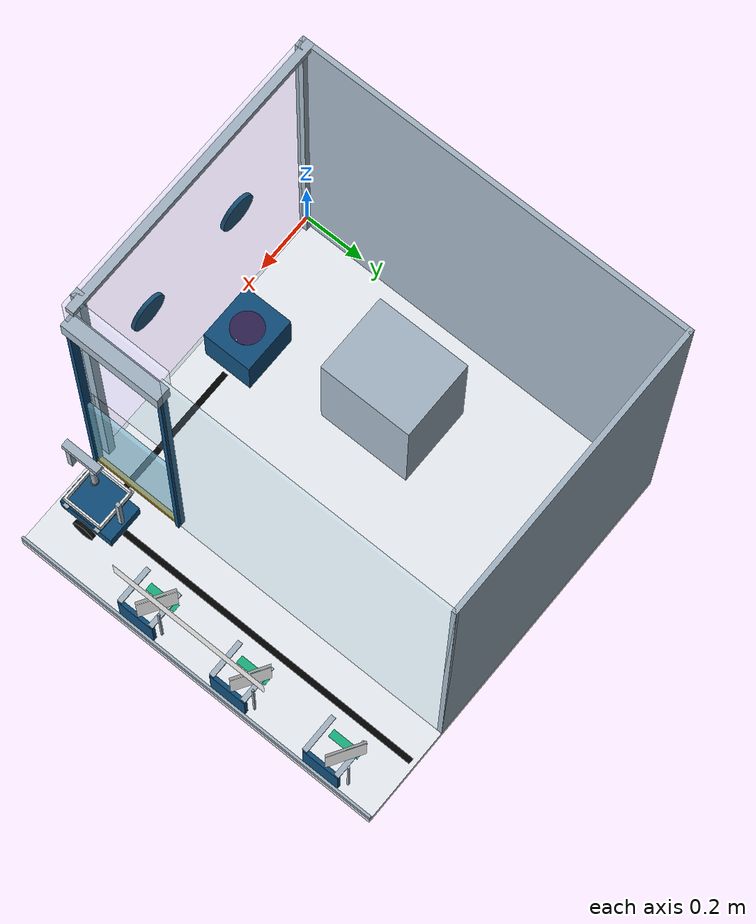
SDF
<?xml version='1.0' encoding='utf-8'?>
<sdf version="1.9">
  <world name="wafer_transport">
    <physics name="physics" type="ignored">
      <max_step_size>0.001</max_step_size>
      <real_time_factor>1.0</real_time_factor>
    </physics>
    <gravity>0 0 -9.81</gravity>
    <plugin filename="gz-sim-physics-system" name="gz::sim::systems::Physics" />
    <plugin filename="gz-sim-user-commands-system" name="gz::sim::systems::UserCommands" />
    <plugin filename="gz-sim-scene-broadcaster-system" name="gz::sim::systems::SceneBroadcaster" />
    <plugin filename="gz-sim-sensors-system" name="gz::sim::systems::Sensors">
      <render_engine>ogre2</render_engine>
    </plugin>
    <scene>
      <ambient>0.65 0.65 0.65 1</ambient>
      <background>0.78 0.83 0.88 1</background>
      <shadows>false</shadows>
    </scene>
    <light name="overhead" type="directional">
      <pose>0 0 3 0 0 0</pose>
      <diffuse>0.9 0.9 0.9 1</diffuse>
      <direction>-0.2 0.1 -1</direction>
    </light>
    <model name="cleanroom">
      <static>true</static>
      <link name="structure">
        <pose>0 0 0 0 0 0</pose>
        <inertial>
          <mass>0.1</mass>
          <inertia>
            <ixx>0.00016666666666666672</ixx>
            <iyy>0.00016666666666666672</iyy>
            <izz>0.00016666666666666672</izz>
            <ixy>0</ixy>
            <ixz>0</ixz>
            <iyz>0</iyz>
          </inertia>
        </inertial>
        <visual name="floor">
          <pose>0.6096 0.6096 -0.015 0 0 0</pose>
          <geometry>
            <box>
              <size>1.2192 1.2192 0.03</size>
            </box>
          </geometry>
          <material>
            <ambient>0.93 0.95 0.97 1</ambient>
            <diffuse>0.93 0.95 0.97 1</diffuse>
          </material>
        </visual>
        <collision name="floor_collision">
          <pose>0.6096 0.6096 -0.015 0 0 0</pose>
          <geometry>
            <box>
              <size>1.2192 1.2192 0.03</size>
            </box>
          </geometry>
          <surface>
            <friction>
              <ode>
                <mu>0.9</mu>
                <mu2>0.9</mu2>
              </ode>
            </friction>
          </surface>
        </collision>
        <visual name="enclosure_back">
          <pose>0.0075 0.6096 0.6096 0 0 0</pose>
          <geometry>
            <box>
              <size>0.015 1.2192 1.2192</size>
            </box>
          </geometry>
          <material>
            <ambient>0.65 0.72 0.78 1</ambient>
            <diffuse>0.65 0.72 0.78 1</diffuse>
          </material>
        </visual>
        <collision name="enclosure_back_collision">
          <pose>0.0075 0.6096 0.6096 0 0 0</pose>
          <geometry>
            <box>
              <size>0.015 1.2192 1.2192</size>
            </box>
          </geometry>
          <surface>
            <friction>
              <ode>
                <mu>0.9</mu>
                <mu2>0.9</mu2>
              </ode>
            </friction>
          </surface>
        </collision>
        <visual name="enclosure_far">
          <pose>0.4572 1.2117 0.6096 0 0 0</pose>
          <geometry>
            <box>
              <size>0.9144 0.015 1.2192</size>
            </box>
          </geometry>
          <material>
            <ambient>0.65 0.72 0.78 1</ambient>
            <diffuse>0.65 0.72 0.78 1</diffuse>
          </material>
        </visual>
        <collision name="enclosure_far_collision">
          <pose>0.4572 1.2117 0.6096 0 0 0</pose>
          <geometry>
            <box>
              <size>0.9144 0.015 1.2192</size>
            </box>
          </geometry>
          <surface>
            <friction>
              <ode>
                <mu>0.9</mu>
                <mu2>0.9</mu2>
              </ode>
            </friction>
          </surface>
        </collision>
        <visual name="divider">
          <pose>0.9094 0.7646 0.6096 0 0 0</pose>
          <geometry>
            <box>
              <size>0.01 0.9092 1.2192</size>
            </box>
          </geometry>
          <material>
            <ambient>0.6 0.8 0.9 1</ambient>
            <diffuse>0.6 0.8 0.9 1</diffuse>
          </material>
          <transparency>0.78</transparency>
        </visual>
        <collision name="divider_collision">
          <pose>0.9094 0.7646 0.6096 0 0 0</pose>
          <geometry>
            <box>
              <size>0.01 0.9092 1.2192</size>
            </box>
          </geometry>
          <surface>
            <friction>
              <ode>
                <mu>0.9</mu>
                <mu2>0.9</mu2>
              </ode>
            </friction>
          </surface>
        </collision>
        <visual name="loading_header">
          <pose>0.8854 0.155 0.8696 0 0 0</pose>
          <geometry>
            <box>
              <size>0.01 0.31 0.6992</size>
            </box>
          </geometry>
          <material>
            <ambient>0.6 0.8 0.9 1</ambient>
            <diffuse>0.6 0.8 0.9 1</diffuse>
          </material>
          <transparency>0.78</transparency>
        </visual>
        <collision name="loading_header_collision">
          <pose>0.8854 0.155 0.8696 0 0 0</pose>
          <geometry>
            <box>
              <size>0.01 0.31 0.6992</size>
            </box>
          </geometry>
          <surface>
            <friction>
              <ode>
                <mu>0.9</mu>
                <mu2>0.9</mu2>
              </ode>
            </friction>
          </surface>
        </collision>
        <visual name="front_glass">
          <pose>0.4572 0.005 0.6096 0 0 0</pose>
          <geometry>
            <box>
              <size>0.9144 0.01 1.2192</size>
            </box>
          </geometry>
          <material>
            <ambient>0.6 0.8 0.9 1</ambient>
            <diffuse>0.6 0.8 0.9 1</diffuse>
          </material>
          <transparency>0.85</transparency>
        </visual>
        <collision name="front_glass_collision">
          <pose>0.4572 0.005 0.6096 0 0 0</pose>
          <geometry>
            <box>
              <size>0.9144 0.01 1.2192</size>
            </box>
          </geometry>
          <surface>
            <friction>
              <ode>
                <mu>0.9</mu>
                <mu2>0.9</mu2>
              </ode>
            </friction>
          </surface>
        </collision>
        <visual name="glove_port_0.28">
          <pose>0.28 -0.003 0.58 1.5707963267948966 0 0</pose>
          <geometry>
            <cylinder>
              <radius>0.06</radius>
              <length>0.012</length>
            </cylinder>
          </geometry>
          <material>
            <ambient>0.06 0.30 0.48 1</ambient>
            <diffuse>0.06 0.30 0.48 1</diffuse>
          </material>
        </visual>
        <visual name="glove_insert_0.28">
          <pose>0.28 -0.006 0.58 1.5707963267948966 0 0</pose>
          <geometry>
            <cylinder>
              <radius>0.046</radius>
              <length>0.014</length>
            </cylinder>
          </geometry>
          <material>
            <ambient>0.65 0.72 0.78 1</ambient>
            <diffuse>0.65 0.72 0.78 1</diffuse>
          </material>
        </visual>
        <visual name="glove_port_0.64">
          <pose>0.64 -0.003 0.58 1.5707963267948966 0 0</pose>
          <geometry>
            <cylinder>
              <radius>0.06</radius>
              <length>0.012</length>
            </cylinder>
          </geometry>
          <material>
            <ambient>0.06 0.30 0.48 1</ambient>
            <diffuse>0.06 0.30 0.48 1</diffuse>
          </material>
        </visual>
        <visual name="glove_insert_0.64">
          <pose>0.64 -0.006 0.58 1.5707963267948966 0 0</pose>
          <geometry>
            <cylinder>
              <radius>0.046</radius>
              <length>0.014</length>
            </cylinder>
          </geometry>
          <material>
            <ambient>0.65 0.72 0.78 1</ambient>
            <diffuse>0.65 0.72 0.78 1</diffuse>
          </material>
        </visual>
        <visual name="frame_0.02">
          <pose>0.02 0.0125 0.6096 0 0 0</pose>
          <geometry>
            <box>
              <size>0.025 0.025 1.2192</size>
            </box>
          </geometry>
          <material>
            <ambient>0.65 0.72 0.78 1</ambient>
            <diffuse>0.65 0.72 0.78 1</diffuse>
          </material>
        </visual>
        <collision name="frame_0.02_collision">
          <pose>0.02 0.0125 0.6096 0 0 0</pose>
          <geometry>
            <box>
              <size>0.025 0.025 1.2192</size>
            </box>
          </geometry>
          <surface>
            <friction>
              <ode>
                <mu>0.9</mu>
                <mu2>0.9</mu2>
              </ode>
            </friction>
          </surface>
        </collision>
        <visual name="frame_0.87">
          <pose>0.87 0.0125 0.6096 0 0 0</pose>
          <geometry>
            <box>
              <size>0.025 0.025 1.2192</size>
            </box>
          </geometry>
          <material>
            <ambient>0.65 0.72 0.78 1</ambient>
            <diffuse>0.65 0.72 0.78 1</diffuse>
          </material>
        </visual>
        <collision name="frame_0.87_collision">
          <pose>0.87 0.0125 0.6096 0 0 0</pose>
          <geometry>
            <box>
              <size>0.025 0.025 1.2192</size>
            </box>
          </geometry>
          <surface>
            <friction>
              <ode>
                <mu>0.9</mu>
                <mu2>0.9</mu2>
              </ode>
            </friction>
          </surface>
        </collision>
        <visual name="top_frame">
          <pose>0.4572 0.025 1.2067 0 0 0</pose>
          <geometry>
            <box>
              <size>0.9144 0.025 0.025</size>
            </box>
          </geometry>
          <material>
            <ambient>0.65 0.72 0.78 1</ambient>
            <diffuse>0.65 0.72 0.78 1</diffuse>
          </material>
        </visual>
        <collision name="top_frame_collision">
          <pose>0.4572 0.025 1.2067 0 0 0</pose>
          <geometry>
            <box>
              <size>0.9144 0.025 0.025</size>
            </box>
          </geometry>
          <surface>
            <friction>
              <ode>
                <mu>0.9</mu>
                <mu2>0.9</mu2>
              </ode>
            </friction>
          </surface>
        </collision>
        <visual name="corridor_boundary">
          <pose>1.2152 0.6096 0.0125 0 0 0</pose>
          <geometry>
            <box>
              <size>0.008 1.2192 0.025</size>
            </box>
          </geometry>
          <material>
            <ambient>0.65 0.72 0.78 1</ambient>
            <diffuse>0.65 0.72 0.78 1</diffuse>
          </material>
        </visual>
        <collision name="corridor_boundary_collision">
          <pose>1.2152 0.6096 0.0125 0 0 0</pose>
          <geometry>
            <box>
              <size>0.008 1.2192 0.025</size>
            </box>
          </geometry>
          <surface>
            <friction>
              <ode>
                <mu>0.9</mu>
                <mu2>0.9</mu2>
              </ode>
            </friction>
          </surface>
        </collision>
        <visual name="path">
          <pose>1.025 0.6096 0.0003 0 0 0</pose>
          <geometry>
            <box>
              <size>0.018 1.19 0.0005</size>
            </box>
          </geometry>
          <material>
            <ambient>0.005 0.005 0.005 1</ambient>
            <diffuse>0.005 0.005 0.005 1</diffuse>
          </material>
        </visual>
        <visual name="room_tape">
          <pose>0.79 0.12 0.0003 0 0 0</pose>
          <geometry>
            <box>
              <size>0.58 0.018 0.0005</size>
            </box>
          </geometry>
          <material>
            <ambient>0.005 0.005 0.005 1</ambient>
            <diffuse>0.005 0.005 0.005 1</diffuse>
          </material>
        </visual>
        <visual name="process_output">
          <pose>0.4 0.12 0.077 0 0 0</pose>
          <geometry>
            <box>
              <size>0.18 0.16 0.154</size>
            </box>
          </geometry>
          <material>
            <ambient>0.06 0.30 0.48 1</ambient>
            <diffuse>0.06 0.30 0.48 1</diffuse>
          </material>
        </visual>
        <collision name="process_output_collision">
          <pose>0.4 0.12 0.077 0 0 0</pose>
          <geometry>
            <box>
              <size>0.18 0.16 0.154</size>
            </box>
          </geometry>
          <surface>
            <friction>
              <ode>
                <mu>0.9</mu>
                <mu2>0.9</mu2>
              </ode>
            </friction>
          </surface>
        </collision>
        <visual name="process_machine">
          <pose>0.3 0.55 0.2 0 0 0</pose>
          <geometry>
            <box>
              <size>0.25 0.3 0.4</size>
            </box>
          </geometry>
          <material>
            <ambient>0.65 0.72 0.78 1</ambient>
            <diffuse>0.65 0.72 0.78 1</diffuse>
          </material>
        </visual>
        <collision name="process_machine_collision">
          <pose>0.3 0.55 0.2 0 0 0</pose>
          <geometry>
            <box>
              <size>0.25 0.3 0.4</size>
            </box>
          </geometry>
          <surface>
            <friction>
              <ode>
                <mu>0.9</mu>
                <mu2>0.9</mu2>
              </ode>
            </friction>
          </surface>
        </collision>
        <visual name="equipment_screen">
          <pose>0.3 0.396 0.32 0 0 0</pose>
          <geometry>
            <box>
              <size>0.12 0.008 0.06</size>
            </box>
          </geometry>
          <material>
            <ambient>0.05 0.65 0.65 1</ambient>
            <diffuse>0.05 0.65 0.65 1</diffuse>
          </material>
        </visual>
        <visual name="loading_rail_-0.054">
          <pose>1.025 0.066 0.142 0 0 0</pose>
          <geometry>
            <box>
              <size>0.15 0.016 0.008</size>
            </box>
          </geometry>
          <material>
            <ambient>0.65 0.72 0.78 1</ambient>
            <diffuse>0.65 0.72 0.78 1</diffuse>
          </material>
        </visual>
        <collision name="loading_rail_-0.054_collision">
          <pose>1.025 0.066 0.142 0 0 0</pose>
          <geometry>
            <box>
              <size>0.15 0.016 0.008</size>
            </box>
          </geometry>
          <surface>
            <friction>
              <ode>
                <mu>0.9</mu>
                <mu2>0.9</mu2>
              </ode>
            </friction>
          </surface>
        </collision>
        <visual name="loading_rail_0.054">
          <pose>1.025 0.174 0.142 0 0 0</pose>
          <geometry>
            <box>
              <size>0.15 0.016 0.008</size>
            </box>
          </geometry>
          <material>
            <ambient>0.65 0.72 0.78 1</ambient>
            <diffuse>0.65 0.72 0.78 1</diffuse>
          </material>
        </visual>
        <collision name="loading_rail_0.054_collision">
          <pose>1.025 0.174 0.142 0 0 0</pose>
          <geometry>
            <box>
              <size>0.15 0.016 0.008</size>
            </box>
          </geometry>
          <surface>
            <friction>
              <ode>
                <mu>0.9</mu>
                <mu2>0.9</mu2>
              </ode>
            </friction>
          </surface>
        </collision>
        <visual name="enclosure_dimensions">
          <pose>0.4572 -0.001 1.11 1.5707963267948966 0 0.0</pose>
          <geometry>
            <plane>
              <normal>0 0 1</normal>
              <size>0.65 0.085</size>
            </plane>
          </geometry>
          <material>
            <ambient>1 1 1 1</ambient>
            <diffuse>1 1 1 1</diffuse>
            <emissive>0.35 0.35 0.35 1</emissive>
            <pbr>
              <metal>
                <albedo_map>../textures/enclosure_label.png</albedo_map>
                <metalness>0</metalness>
                <roughness>1</roughness>
              </metal>
            </pbr>
          </material>
          <cast_shadows>false</cast_shadows>
        </visual>
        <visual name="corridor_dimensions">
          <pose>1.219 0.62 0.55 1.5707963267948966 0 1.5707963267948966</pose>
          <geometry>
            <plane>
              <normal>0 0 1</normal>
              <size>0.5 0.07</size>
            </plane>
          </geometry>
          <material>
            <ambient>1 1 1 1</ambient>
            <diffuse>1 1 1 1</diffuse>
            <emissive>0.35 0.35 0.35 1</emissive>
            <pbr>
              <metal>
                <albedo_map>../textures/corridor_label.png</albedo_map>
                <metalness>0</metalness>
                <roughness>1</roughness>
              </metal>
            </pbr>
          </material>
          <cast_shadows>false</cast_shadows>
        </visual>
      </link>
    </model>
    <include>
      <uri>model://wafer</uri>
      <name>wafer</name>
      <pose>0.4 0.12 0.156 0 0 0</pose>
    </include>
    <include>
      <uri>model://carrier</uri>
      <name>carrier</name>
      <pose>1.025 0.12 0.15 0 0 1.5707963267948966</pose>
    </include>
    <include>
      <uri>model://guillotine_door</uri>
      <name>guillotine_door</name>
      <pose>0.9094 0 0 0 0 0</pose>
    </include>
    <include>
      <uri>model://transport_robot</uri>
      <name>transport_robot</name>
      <pose>1.025 0.12 0 0 0 1.5707963267948966</pose>
    </include>
    <include>
      <uri>model://stations</uri>
      <name>stations</name>
      <pose>0 0 0 0 0 0</pose>
    </include>
    <gui fullscreen="false">
      <plugin filename="MinimalScene" name="3D View">
        <engine>ogre2</engine>
        <scene>scene</scene>
        <camera_pose>2.6 -1.6 2.0 0 0.48 2.35</camera_pose>
      </plugin>
      <plugin filename="GzSceneManager" name="Scene Manager" />
      <plugin filename="InteractiveViewControl" name="View Control" />
      <plugin filename="CameraTracking" name="Camera Tracking" />
    </gui>
  </world>
</sdf>

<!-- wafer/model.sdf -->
<sdf version="1.9">
  <model name="wafer">
    <static>false</static>
    <self_collide>true</self_collide>
    <link name="body">
      <pose>0 0 0 0 0 0</pose>
      <inertial>
        <mass>0.02</mass>
        <inertia>
          <ixx>1.667333333333334e-05</ixx>
          <iyy>1.667333333333334e-05</iyy>
          <izz>3.333333333333334e-05</izz>
          <ixy>0</ixy>
          <ixz>0</ixz>
          <iyz>0</iyz>
        </inertia>
      </inertial>
      <visual name="silicon">
        <pose>0 0 0 0 0 0</pose>
        <geometry>
          <cylinder>
            <radius>0.05</radius>
            <length>0.002</length>
          </cylinder>
        </geometry>
        <material>
          <ambient>0.18 0.13 0.32 1</ambient>
          <diffuse>0.18 0.13 0.32 1</diffuse>
        </material>
      </visual>
      <collision name="silicon_collision">
        <pose>0 0 0 0 0 0</pose>
        <geometry>
          <cylinder>
            <radius>0.05</radius>
            <length>0.002</length>
          </cylinder>
        </geometry>
        <surface>
          <friction>
            <ode>
              <mu>0.9</mu>
              <mu2>0.9</mu2>
            </ode>
          </friction>
        </surface>
      </collision>
      <visual name="orientation_notch">
        <pose>0.046 0 0.0011 0 0 0</pose>
        <geometry>
          <box>
            <size>0.006 0.004 0.0002</size>
          </box>
        </geometry>
        <material>
          <ambient>0.7 0.7 0.8 1</ambient>
          <diffuse>0.7 0.7 0.8 1</diffuse>
        </material>
      </visual>
    </link>
    <plugin filename="gz-sim-pose-publisher-system" name="gz::sim::systems::PosePublisher">
      <publish_link_pose>false</publish_link_pose>
      <publish_model_pose>true</publish_model_pose>
      <publish_nested_model_pose>false</publish_nested_model_pose>
      <use_pose_vector_msg>false</use_pose_vector_msg>
      <update_frequency>30</update_frequency>
      <topic>/poses/wafer</topic>
    </plugin>
  </model>
</sdf>

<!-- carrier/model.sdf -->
<sdf version="1.9">
  <model name="carrier">
    <static>false</static>
    <self_collide>true</self_collide>
    <link name="body">
      <pose>0 0 0 0 0 0</pose>
      <inertial>
        <mass>0.09</mass>
        <inertia>
          <ixx>0.00013143750000000002</ixx>
          <iyy>0.00013143750000000002</iyy>
          <izz>0.00025350000000000004</izz>
          <ixy>0</ixy>
          <ixz>0</ixz>
          <iyz>0</iyz>
        </inertia>
      </inertial>
      <visual name="base">
        <pose>0 0 0 0 0 0</pose>
        <geometry>
          <box>
            <size>0.13 0.13 0.008</size>
          </box>
        </geometry>
        <material>
          <ambient>0.06 0.30 0.48 1</ambient>
          <diffuse>0.06 0.30 0.48 1</diffuse>
        </material>
      </visual>
      <collision name="base_collision">
        <pose>0 0 0 0 0 0</pose>
        <geometry>
          <box>
            <size>0.13 0.13 0.008</size>
          </box>
        </geometry>
        <surface>
          <friction>
            <ode>
              <mu>0.9</mu>
              <mu2>0.9</mu2>
            </ode>
          </friction>
        </surface>
      </collision>
      <visual name="rim_0_-1">
        <pose>-0.062 0 0.017 0 0 0</pose>
        <geometry>
          <box>
            <size>0.006 0.13 0.026</size>
          </box>
        </geometry>
        <material>
          <ambient>0.93 0.95 0.97 1</ambient>
          <diffuse>0.93 0.95 0.97 1</diffuse>
        </material>
      </visual>
      <collision name="rim_0_-1_collision">
        <pose>-0.062 0 0.017 0 0 0</pose>
        <geometry>
          <box>
            <size>0.006 0.13 0.026</size>
          </box>
        </geometry>
        <surface>
          <friction>
            <ode>
              <mu>0.9</mu>
              <mu2>0.9</mu2>
            </ode>
          </friction>
        </surface>
      </collision>
      <visual name="rim_0_1">
        <pose>0.062 0 0.017 0 0 0</pose>
        <geometry>
          <box>
            <size>0.006 0.13 0.026</size>
          </box>
        </geometry>
        <material>
          <ambient>0.93 0.95 0.97 1</ambient>
          <diffuse>0.93 0.95 0.97 1</diffuse>
        </material>
      </visual>
      <collision name="rim_0_1_collision">
        <pose>0.062 0 0.017 0 0 0</pose>
        <geometry>
          <box>
            <size>0.006 0.13 0.026</size>
          </box>
        </geometry>
        <surface>
          <friction>
            <ode>
              <mu>0.9</mu>
              <mu2>0.9</mu2>
            </ode>
          </friction>
        </surface>
      </collision>
      <visual name="rim_1_-1">
        <pose>0 -0.062 0.017 0 0 0</pose>
        <geometry>
          <box>
            <size>0.13 0.006 0.026</size>
          </box>
        </geometry>
        <material>
          <ambient>0.93 0.95 0.97 1</ambient>
          <diffuse>0.93 0.95 0.97 1</diffuse>
        </material>
      </visual>
      <collision name="rim_1_-1_collision">
        <pose>0 -0.062 0.017 0 0 0</pose>
        <geometry>
          <box>
            <size>0.13 0.006 0.026</size>
          </box>
        </geometry>
        <surface>
          <friction>
            <ode>
              <mu>0.9</mu>
              <mu2>0.9</mu2>
            </ode>
          </friction>
        </surface>
      </collision>
      <visual name="rim_1_1">
        <pose>0 0.062 0.017 0 0 0</pose>
        <geometry>
          <box>
            <size>0.13 0.006 0.026</size>
          </box>
        </geometry>
        <material>
          <ambient>0.93 0.95 0.97 1</ambient>
          <diffuse>0.93 0.95 0.97 1</diffuse>
        </material>
      </visual>
      <collision name="rim_1_1_collision">
        <pose>0 0.062 0.017 0 0 0</pose>
        <geometry>
          <box>
            <size>0.13 0.006 0.026</size>
          </box>
        </geometry>
        <surface>
          <friction>
            <ode>
              <mu>0.9</mu>
              <mu2>0.9</mu2>
            </ode>
          </friction>
        </surface>
      </collision>
      <visual name="hinge">
        <pose>-0.065 0 0.008 0 0 0</pose>
        <geometry>
          <box>
            <size>0.012 0.13 0.008</size>
          </box>
        </geometry>
        <material>
          <ambient>0.65 0.72 0.78 1</ambient>
          <diffuse>0.65 0.72 0.78 1</diffuse>
        </material>
      </visual>
      <collision name="hinge_collision">
        <pose>-0.065 0 0.008 0 0 0</pose>
        <geometry>
          <box>
            <size>0.012 0.13 0.008</size>
          </box>
        </geometry>
        <surface>
          <friction>
            <ode>
              <mu>0.9</mu>
              <mu2>0.9</mu2>
            </ode>
          </friction>
        </surface>
      </collision>
    </link>
    <plugin filename="gz-sim-pose-publisher-system" name="gz::sim::systems::PosePublisher">
      <publish_link_pose>false</publish_link_pose>
      <publish_model_pose>true</publish_model_pose>
      <publish_nested_model_pose>false</publish_nested_model_pose>
      <use_pose_vector_msg>false</use_pose_vector_msg>
      <update_frequency>30</update_frequency>
      <topic>/poses/carrier</topic>
    </plugin>
  </model>
</sdf>

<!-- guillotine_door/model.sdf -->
<sdf version="1.9">
  <model name="guillotine_door">
    <static>false</static>
    <self_collide>true</self_collide>
    <link name="frame">
      <pose>0 0 0 0 0 0</pose>
      <inertial>
        <mass>2</mass>
        <inertia>
          <ixx>0.003333333333333334</ixx>
          <iyy>0.003333333333333334</iyy>
          <izz>0.003333333333333334</izz>
          <ixy>0</ixy>
          <ixz>0</ixz>
          <iyz>0</iyz>
        </inertia>
      </inertial>
      <visual name="guide_0.008">
        <pose>0 0.008 0.525 0 0 0</pose>
        <geometry>
          <box>
            <size>0.026 0.012 1.05</size>
          </box>
        </geometry>
        <material>
          <ambient>0.06 0.30 0.48 1</ambient>
          <diffuse>0.06 0.30 0.48 1</diffuse>
        </material>
      </visual>
      <collision name="guide_0.008_collision">
        <pose>0 0.008 0.525 0 0 0</pose>
        <geometry>
          <box>
            <size>0.026 0.012 1.05</size>
          </box>
        </geometry>
        <surface>
          <friction>
            <ode>
              <mu>0.9</mu>
              <mu2>0.9</mu2>
            </ode>
          </friction>
        </surface>
      </collision>
      <visual name="guide_0.302">
        <pose>0 0.302 0.525 0 0 0</pose>
        <geometry>
          <box>
            <size>0.026 0.012 1.05</size>
          </box>
        </geometry>
        <material>
          <ambient>0.06 0.30 0.48 1</ambient>
          <diffuse>0.06 0.30 0.48 1</diffuse>
        </material>
      </visual>
      <collision name="guide_0.302_collision">
        <pose>0 0.302 0.525 0 0 0</pose>
        <geometry>
          <box>
            <size>0.026 0.012 1.05</size>
          </box>
        </geometry>
        <surface>
          <friction>
            <ode>
              <mu>0.9</mu>
              <mu2>0.9</mu2>
            </ode>
          </friction>
        </surface>
      </collision>
      <visual name="drive_housing">
        <pose>0 0.155 1.08 0 0 0</pose>
        <geometry>
          <box>
            <size>0.045 0.31 0.06</size>
          </box>
        </geometry>
        <material>
          <ambient>0.65 0.72 0.78 1</ambient>
          <diffuse>0.65 0.72 0.78 1</diffuse>
        </material>
      </visual>
      <collision name="drive_housing_collision">
        <pose>0 0.155 1.08 0 0 0</pose>
        <geometry>
          <box>
            <size>0.045 0.31 0.06</size>
          </box>
        </geometry>
        <surface>
          <friction>
            <ode>
              <mu>0.9</mu>
              <mu2>0.9</mu2>
            </ode>
          </friction>
        </surface>
      </collision>
    </link>
    <joint name="door_mount" type="fixed">
      <parent>world</parent>
      <child>frame</child>
    </joint>
    <link name="panel">
      <pose>0 0.155 0.245 0 0 0</pose>
      <inertial>
        <mass>0.4</mass>
        <inertia>
          <ixx>0.010256133333333334</ixx>
          <iyy>0.007684800000000001</iyy>
          <izz>0.002580933333333334</izz>
          <ixy>0</ixy>
          <ixz>0</ixz>
          <iyz>0</iyz>
        </inertia>
      </inertial>
      <visual name="sliding_panel">
        <pose>0 0 0 0 0 0</pose>
        <geometry>
          <box>
            <size>0.012 0.278 0.48</size>
          </box>
        </geometry>
        <material>
          <ambient>0.5 0.75 0.85 1</ambient>
          <diffuse>0.5 0.75 0.85 1</diffuse>
        </material>
        <transparency>0.35</transparency>
      </visual>
      <collision name="sliding_panel_collision">
        <pose>0 0 0 0 0 0</pose>
        <geometry>
          <box>
            <size>0.012 0.278 0.48</size>
          </box>
        </geometry>
        <surface>
          <friction>
            <ode>
              <mu>0.9</mu>
              <mu2>0.9</mu2>
            </ode>
          </friction>
        </surface>
      </collision>
      <visual name="bottom_edge">
        <pose>0 0 -0.234 0 0 0</pose>
        <geometry>
          <box>
            <size>0.016 0.278 0.012</size>
          </box>
        </geometry>
        <material>
          <ambient>0.9 0.65 0.05 1</ambient>
          <diffuse>0.9 0.65 0.05 1</diffuse>
        </material>
      </visual>
      <collision name="bottom_edge_collision">
        <pose>0 0 -0.234 0 0 0</pose>
        <geometry>
          <box>
            <size>0.016 0.278 0.012</size>
          </box>
        </geometry>
        <surface>
          <friction>
            <ode>
              <mu>0.9</mu>
              <mu2>0.9</mu2>
            </ode>
          </friction>
        </surface>
      </collision>
    </link>
    <joint name="door_z" type="prismatic">
      <parent>frame</parent>
      <child>panel</child>
      <axis>
        <xyz>0 0 1</xyz>
        <limit>
          <lower>-0.004</lower>
          <upper>0.535</upper>
          <effort>100</effort>
          <velocity>0.12</velocity>
        </limit>
      </axis>
    </joint>
    <plugin filename="gz-sim-joint-position-controller-system" name="gz::sim::systems::JointPositionController">
      <joint_name>door_z</joint_name>
      <topic>/actuators/door_z</topic>
      <use_velocity_commands>false</use_velocity_commands>
      <cmd_max>20.0</cmd_max>
      <p_gain>600.0</p_gain>
      <i_gain>0.0</i_gain>
      <d_gain>30.0</d_gain>
      <cmd_min>-20.0</cmd_min>
      <cmd_offset>3.9240000000000004</cmd_offset>
    </plugin>
    <plugin filename="gz-sim-joint-state-publisher-system" name="gz::sim::systems::JointStatePublisher">
      <topic>/door/joint_states</topic>
    </plugin>
  </model>
</sdf>

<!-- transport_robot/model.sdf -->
<sdf version="1.9">
  <model name="transport_robot">
    <static>false</static>
    <self_collide>true</self_collide>
    <link name="base_link">
      <pose>0 0 0.066 0 0 0</pose>
      <inertial>
        <mass>1.0</mass>
        <inertia>
          <ixx>0.0014083333333333333</ixx>
          <iyy>0.0029083333333333335</iyy>
          <izz>0.0038999999999999994</izz>
          <ixy>0</ixy>
          <ixz>0</ixz>
          <iyz>0</iyz>
        </inertia>
      </inertial>
      <visual name="chassis">
        <pose>0 0 0 0 0 0</pose>
        <geometry>
          <box>
            <size>0.18 0.12 0.05</size>
          </box>
        </geometry>
        <material>
          <ambient>0.06 0.30 0.48 1</ambient>
          <diffuse>0.06 0.30 0.48 1</diffuse>
        </material>
      </visual>
      <collision name="chassis_collision">
        <pose>0 0 0 0 0 0</pose>
        <geometry>
          <box>
            <size>0.18 0.12 0.05</size>
          </box>
        </geometry>
        <surface>
          <friction>
            <ode>
              <mu>0.9</mu>
              <mu2>0.9</mu2>
            </ode>
          </friction>
        </surface>
      </collision>
      <visual name="caster_-0.07">
        <pose>-0.07 0 -0.054 0 0 0</pose>
        <geometry>
          <sphere>
            <radius>0.012</radius>
          </sphere>
        </geometry>
        <material>
          <ambient>0.65 0.72 0.78 1</ambient>
          <diffuse>0.65 0.72 0.78 1</diffuse>
        </material>
      </visual>
      <collision name="caster_-0.07_collision">
        <pose>-0.07 0 -0.054 0 0 0</pose>
        <geometry>
          <sphere>
            <radius>0.012</radius>
          </sphere>
        </geometry>
        <surface>
          <friction>
            <ode>
              <mu>0.001</mu>
              <mu2>0.001</mu2>
            </ode>
          </friction>
        </surface>
      </collision>
      <visual name="caster_0.07">
        <pose>0.07 0 -0.054 0 0 0</pose>
        <geometry>
          <sphere>
            <radius>0.012</radius>
          </sphere>
        </geometry>
        <material>
          <ambient>0.65 0.72 0.78 1</ambient>
          <diffuse>0.65 0.72 0.78 1</diffuse>
        </material>
      </visual>
      <collision name="caster_0.07_collision">
        <pose>0.07 0 -0.054 0 0 0</pose>
        <geometry>
          <sphere>
            <radius>0.012</radius>
          </sphere>
        </geometry>
        <surface>
          <friction>
            <ode>
              <mu>0.001</mu>
              <mu2>0.001</mu2>
            </ode>
          </friction>
        </surface>
      </collision>
      <visual name="camera_mast">
        <pose>0.077 0 0.105 0 0 0</pose>
        <geometry>
          <box>
            <size>0.012 0.012 0.16</size>
          </box>
        </geometry>
        <material>
          <ambient>0.65 0.72 0.78 1</ambient>
          <diffuse>0.65 0.72 0.78 1</diffuse>
        </material>
      </visual>
      <sensor name="forward_camera" type="camera">
        <pose>0.095 0 0.184 0 0 0</pose>
        <always_on>true</always_on>
        <update_rate>8</update_rate>
        <topic>/camera/image_raw</topic>
        <camera>
          <horizontal_fov>1.7</horizontal_fov>
          <image>
            <width>960</width>
            <height>720</height>
            <format>R8G8B8</format>
          </image>
          <clip>
            <near>0.01</near>
            <far>3</far>
          </clip>
        </camera>
      </sensor>
      <sensor name="down_camera" type="camera">
        <pose>0.13 0 0.015 0 1.5707963267948966 0</pose>
        <always_on>true</always_on>
        <update_rate>20</update_rate>
        <topic>/down_camera/image_raw</topic>
        <camera>
          <horizontal_fov>1.3</horizontal_fov>
          <image>
            <width>320</width>
            <height>240</height>
            <format>R8G8B8</format>
          </image>
          <clip>
            <near>0.01</near>
            <far>3</far>
          </clip>
        </camera>
      </sensor>
    </link>
    <link name="left_wheel">
      <pose>0 0.07 0.035 0 0 0</pose>
      <inertial>
        <mass>0.08</mass>
        <inertia>
          <ixx>3.3973333333333336e-05</ixx>
          <iyy>6.533333333333334e-05</iyy>
          <izz>3.3973333333333336e-05</izz>
          <ixy>0</ixy>
          <ixz>0</ixz>
          <iyz>0</iyz>
        </inertia>
      </inertial>
      <visual name="tire">
        <pose>0 0 0 1.5707963267948966 0 0</pose>
        <geometry>
          <cylinder>
            <radius>0.035</radius>
            <length>0.014</length>
          </cylinder>
        </geometry>
        <material>
          <ambient>0.035 0.04 0.045 1</ambient>
          <diffuse>0.035 0.04 0.045 1</diffuse>
        </material>
      </visual>
      <collision name="tire_collision">
        <pose>0 0 0 1.5707963267948966 0 0</pose>
        <geometry>
          <cylinder>
            <radius>0.035</radius>
            <length>0.014</length>
          </cylinder>
        </geometry>
        <surface>
          <friction>
            <ode>
              <mu>0.9</mu>
              <mu2>0.9</mu2>
            </ode>
          </friction>
        </surface>
      </collision>
    </link>
    <joint name="left_wheel_joint" type="revolute">
      <parent>base_link</parent>
      <child>left_wheel</child>
      <axis>
        <xyz>0 1 0</xyz>
        <limit>
          <lower>-1e+16</lower>
          <upper>1e+16</upper>
          <effort>100</effort>
          <velocity>20</velocity>
        </limit>
      </axis>
    </joint>
    <link name="right_wheel">
      <pose>0 -0.07 0.035 0 0 0</pose>
      <inertial>
        <mass>0.08</mass>
        <inertia>
          <ixx>3.3973333333333336e-05</ixx>
          <iyy>6.533333333333334e-05</iyy>
          <izz>3.3973333333333336e-05</izz>
          <ixy>0</ixy>
          <ixz>0</ixz>
          <iyz>0</iyz>
        </inertia>
      </inertial>
      <visual name="tire">
        <pose>0 0 0 1.5707963267948966 0 0</pose>
        <geometry>
          <cylinder>
            <radius>0.035</radius>
            <length>0.014</length>
          </cylinder>
        </geometry>
        <material>
          <ambient>0.035 0.04 0.045 1</ambient>
          <diffuse>0.035 0.04 0.045 1</diffuse>
        </material>
      </visual>
      <collision name="tire_collision">
        <pose>0 0 0 1.5707963267948966 0 0</pose>
        <geometry>
          <cylinder>
            <radius>0.035</radius>
            <length>0.014</length>
          </cylinder>
        </geometry>
        <surface>
          <friction>
            <ode>
              <mu>0.9</mu>
              <mu2>0.9</mu2>
            </ode>
          </friction>
        </surface>
      </collision>
    </link>
    <joint name="right_wheel_joint" type="revolute">
      <parent>base_link</parent>
      <child>right_wheel</child>
      <axis>
        <xyz>0 1 0</xyz>
        <limit>
          <lower>-1e+16</lower>
          <upper>1e+16</upper>
          <effort>100</effort>
          <velocity>20</velocity>
        </limit>
      </axis>
    </joint>
    <link name="lift">
      <pose>0 0 0.12 0 0 0</pose>
      <inertial>
        <mass>0.04</mass>
        <inertia>
          <ixx>6.666666666666668e-05</ixx>
          <iyy>6.666666666666668e-05</iyy>
          <izz>6.666666666666668e-05</izz>
          <ixy>0</ixy>
          <ixz>0</ixz>
          <iyz>0</iyz>
        </inertia>
      </inertial>
      <visual name="lift_column">
        <pose>0 0 0 0 0 0</pose>
        <geometry>
          <box>
            <size>0.045 0.04 0.025</size>
          </box>
        </geometry>
        <material>
          <ambient>0.65 0.72 0.78 1</ambient>
          <diffuse>0.65 0.72 0.78 1</diffuse>
        </material>
      </visual>
    </link>
    <link name="tray">
      <pose>0 0 0.14 0 0 0</pose>
      <inertial>
        <mass>0.04</mass>
        <inertia>
          <ixx>6.666666666666668e-05</ixx>
          <iyy>6.666666666666668e-05</iyy>
          <izz>6.666666666666668e-05</izz>
          <ixy>0</ixy>
          <ixz>0</ixz>
          <iyz>0</iyz>
        </inertia>
      </inertial>
      <visual name="transfer_fork">
        <pose>0 0 0 0 0 0</pose>
        <geometry>
          <box>
            <size>0.07 0.13 0.008</size>
          </box>
        </geometry>
        <material>
          <ambient>0.65 0.72 0.78 1</ambient>
          <diffuse>0.65 0.72 0.78 1</diffuse>
        </material>
      </visual>
    </link>
    <joint name="tray_z" type="prismatic">
      <parent>base_link</parent>
      <child>lift</child>
      <axis>
        <xyz>0 0 1</xyz>
        <limit>
          <lower>-0.03</lower>
          <upper>0.01</upper>
          <effort>100</effort>
          <velocity>0.12</velocity>
        </limit>
      </axis>
    </joint>
    <plugin filename="gz-sim-joint-position-controller-system" name="gz::sim::systems::JointPositionController">
      <joint_name>tray_z</joint_name>
      <topic>/actuators/tray_z</topic>
      <use_velocity_commands>true</use_velocity_commands>
      <cmd_max>0.1</cmd_max>
    </plugin>
    <joint name="tray_y" type="prismatic">
      <parent>lift</parent>
      <child>tray</child>
      <axis>
        <xyz>0 1 0</xyz>
        <limit>
          <lower>-0.125</lower>
          <upper>0.005</upper>
          <effort>100</effort>
          <velocity>0.12</velocity>
        </limit>
      </axis>
    </joint>
    <plugin filename="gz-sim-joint-position-controller-system" name="gz::sim::systems::JointPositionController">
      <joint_name>tray_y</joint_name>
      <topic>/actuators/tray_y</topic>
      <use_velocity_commands>true</use_velocity_commands>
      <cmd_max>0.1</cmd_max>
    </plugin>
    <plugin filename="gz-sim-diff-drive-system" name="gz::sim::systems::DiffDrive">
      <left_joint>left_wheel_joint</left_joint>
      <right_joint>right_wheel_joint</right_joint>
      <wheel_separation>0.14</wheel_separation>
      <wheel_radius>0.035</wheel_radius>
      <topic>/cmd_vel</topic>
      <odom_topic>/odom</odom_topic>
      <tf_topic>/robot/tf</tf_topic>
      <frame_id>odom</frame_id>
      <child_frame_id>base_link</child_frame_id>
      <odom_publish_frequency>30</odom_publish_frequency>
      <max_linear_acceleration>0.08</max_linear_acceleration>
      <max_angular_acceleration>0.8</max_angular_acceleration>
    </plugin>
    <plugin filename="gz-sim-joint-state-publisher-system" name="gz::sim::systems::JointStatePublisher">
      <topic>/robot/joint_states</topic>
    </plugin>
    <link name="wand_lift">
      <pose>-0.075 0 0.44 0 0 0</pose>
      <inertial>
        <mass>0.025</mass>
        <inertia>
          <ixx>4.166666666666668e-05</ixx>
          <iyy>4.166666666666668e-05</iyy>
          <izz>4.166666666666668e-05</izz>
          <ixy>0</ixy>
          <ixz>0</ixz>
          <iyz>0</iyz>
        </inertia>
      </inertial>
      <visual name="mast">
        <pose>0 0 -0.05 0 0 0</pose>
        <geometry>
          <box>
            <size>0.016 0.018 0.14</size>
          </box>
        </geometry>
        <material>
          <ambient>0.65 0.72 0.78 1</ambient>
          <diffuse>0.65 0.72 0.78 1</diffuse>
        </material>
      </visual>
      <collision name="mast_collision">
        <pose>0 0 -0.05 0 0 0</pose>
        <geometry>
          <box>
            <size>0.016 0.018 0.14</size>
          </box>
        </geometry>
        <surface>
          <friction>
            <ode>
              <mu>0.9</mu>
              <mu2>0.9</mu2>
            </ode>
          </friction>
        </surface>
      </collision>
      <visual name="fixed_sleeve">
        <pose>0.045 0 0.012 0 0 0</pose>
        <geometry>
          <box>
            <size>0.12 0.024 0.024</size>
          </box>
        </geometry>
        <material>
          <ambient>0.65 0.72 0.78 1</ambient>
          <diffuse>0.65 0.72 0.78 1</diffuse>
        </material>
      </visual>
    </link>
    <link name="reach_link_1">
      <pose>-0.04 0 0.452 0 0 0</pose>
      <inertial>
        <mass>0.01</mass>
        <inertia>
          <ixx>1.666666666666667e-05</ixx>
          <iyy>1.666666666666667e-05</iyy>
          <izz>1.666666666666667e-05</izz>
          <ixy>0</ixy>
          <ixz>0</ixz>
          <iyz>0</iyz>
        </inertia>
      </inertial>
      <visual name="telescoping_tube">
        <pose>0 0 0 0 0 0</pose>
        <geometry>
          <box>
            <size>0.1 0.02 0.02</size>
          </box>
        </geometry>
        <material>
          <ambient>0.65 0.72 0.78 1</ambient>
          <diffuse>0.65 0.72 0.78 1</diffuse>
        </material>
      </visual>
    </link>
    <joint name="reach_1" type="prismatic">
      <parent>wand_lift</parent>
      <child>reach_link_1</child>
      <axis>
        <xyz>1 0 0</xyz>
        <limit>
          <lower>-0.003</lower>
          <upper>0.09</upper>
          <effort>100</effort>
          <velocity>0.12</velocity>
        </limit>
      </axis>
    </joint>
    <plugin filename="gz-sim-joint-position-controller-system" name="gz::sim::systems::JointPositionController">
      <joint_name>reach_1</joint_name>
      <topic>/actuators/reach_1</topic>
      <use_velocity_commands>true</use_velocity_commands>
      <cmd_max>0.1</cmd_max>
    </plugin>
    <link name="reach_link_2">
      <pose>-0.04 0 0.452 0 0 0</pose>
      <inertial>
        <mass>0.01</mass>
        <inertia>
          <ixx>1.666666666666667e-05</ixx>
          <iyy>1.666666666666667e-05</iyy>
          <izz>1.666666666666667e-05</izz>
          <ixy>0</ixy>
          <ixz>0</ixz>
          <iyz>0</iyz>
        </inertia>
      </inertial>
      <visual name="telescoping_tube">
        <pose>0 0 0 0 0 0</pose>
        <geometry>
          <box>
            <size>0.1 0.016 0.016</size>
          </box>
        </geometry>
        <material>
          <ambient>0.65 0.72 0.78 1</ambient>
          <diffuse>0.65 0.72 0.78 1</diffuse>
        </material>
      </visual>
    </link>
    <joint name="reach_2" type="prismatic">
      <parent>reach_link_1</parent>
      <child>reach_link_2</child>
      <axis>
        <xyz>1 0 0</xyz>
        <limit>
          <lower>-0.003</lower>
          <upper>0.09</upper>
          <effort>100</effort>
          <velocity>0.12</velocity>
        </limit>
      </axis>
    </joint>
    <plugin filename="gz-sim-joint-position-controller-system" name="gz::sim::systems::JointPositionController">
      <joint_name>reach_2</joint_name>
      <topic>/actuators/reach_2</topic>
      <use_velocity_commands>true</use_velocity_commands>
      <cmd_max>0.1</cmd_max>
    </plugin>
    <link name="wand">
      <pose>0 0 0.342 0 0 0</pose>
      <inertial>
        <mass>0.025</mass>
        <inertia>
          <ixx>4.166666666666668e-05</ixx>
          <iyy>4.166666666666668e-05</iyy>
          <izz>4.166666666666668e-05</izz>
          <ixy>0</ixy>
          <ixz>0</ixz>
          <iyz>0</iyz>
        </inertia>
      </inertial>
      <visual name="vacuum_wand">
        <pose>0 0 0 0 0 0</pose>
        <geometry>
          <cylinder>
            <radius>0.008</radius>
            <length>0.08</length>
          </cylinder>
        </geometry>
        <material>
          <ambient>0.65 0.72 0.78 1</ambient>
          <diffuse>0.65 0.72 0.78 1</diffuse>
        </material>
      </visual>
      <collision name="vacuum_wand_collision">
        <pose>0 0 0 0 0 0</pose>
        <geometry>
          <cylinder>
            <radius>0.008</radius>
            <length>0.08</length>
          </cylinder>
        </geometry>
        <surface>
          <friction>
            <ode>
              <mu>0.9</mu>
              <mu2>0.9</mu2>
            </ode>
          </friction>
        </surface>
      </collision>
      <visual name="vacuum_cup">
        <pose>0 0 -0.04 0 0 0</pose>
        <geometry>
          <cylinder>
            <radius>0.012</radius>
            <length>0.004</length>
          </cylinder>
        </geometry>
        <material>
          <ambient>0.05 0.05 0.06 1</ambient>
          <diffuse>0.05 0.05 0.06 1</diffuse>
        </material>
      </visual>
      <collision name="vacuum_cup_collision">
        <pose>0 0 -0.04 0 0 0</pose>
        <geometry>
          <cylinder>
            <radius>0.012</radius>
            <length>0.004</length>
          </cylinder>
        </geometry>
        <surface>
          <friction>
            <ode>
              <mu>0.9</mu>
              <mu2>0.9</mu2>
            </ode>
          </friction>
        </surface>
      </collision>
      <visual name="reach_rail">
        <pose>-0.04 0 0.11 0 0 0</pose>
        <geometry>
          <box>
            <size>0.1 0.012 0.012</size>
          </box>
        </geometry>
        <material>
          <ambient>0.65 0.72 0.78 1</ambient>
          <diffuse>0.65 0.72 0.78 1</diffuse>
        </material>
      </visual>
    </link>
    <joint name="wand_z" type="prismatic">
      <parent>base_link</parent>
      <child>wand_lift</child>
      <axis>
        <xyz>0 0 1</xyz>
        <limit>
          <lower>-0.145</lower>
          <upper>0.01</upper>
          <effort>100</effort>
          <velocity>0.12</velocity>
        </limit>
      </axis>
    </joint>
    <plugin filename="gz-sim-joint-position-controller-system" name="gz::sim::systems::JointPositionController">
      <joint_name>wand_z</joint_name>
      <topic>/actuators/wand_z</topic>
      <use_velocity_commands>true</use_velocity_commands>
      <cmd_max>0.1</cmd_max>
    </plugin>
    <joint name="wand_x" type="prismatic">
      <parent>reach_link_2</parent>
      <child>wand</child>
      <axis>
        <xyz>1 0 0</xyz>
        <limit>
          <lower>-0.003</lower>
          <upper>0.09</upper>
          <effort>100</effort>
          <velocity>0.12</velocity>
        </limit>
      </axis>
    </joint>
    <plugin filename="gz-sim-joint-position-controller-system" name="gz::sim::systems::JointPositionController">
      <joint_name>wand_x</joint_name>
      <topic>/actuators/wand_x</topic>
      <use_velocity_commands>true</use_velocity_commands>
      <cmd_max>0.1</cmd_max>
    </plugin>
    <plugin filename="gz-sim-detachable-joint-system" name="gz::sim::systems::DetachableJoint">
      <parent_link>wand</parent_link>
      <child_model>wafer</child_model>
      <child_link>body</child_link>
      <attach_topic>/attachments/vacuum/attach</attach_topic>
      <detach_topic>/attachments/vacuum/detach</detach_topic>
      <output_topic>/attachments/vacuum/state</output_topic>
    </plugin>
    <plugin filename="gz-sim-pose-publisher-system" name="gz::sim::systems::PosePublisher">
      <publish_link_pose>false</publish_link_pose>
      <publish_model_pose>true</publish_model_pose>
      <publish_nested_model_pose>false</publish_nested_model_pose>
      <use_pose_vector_msg>false</use_pose_vector_msg>
      <update_frequency>30</update_frequency>
      <topic>/poses/transport_robot</topic>
    </plugin>
    <plugin filename="gz-sim-detachable-joint-system" name="gz::sim::systems::DetachableJoint">
      <parent_link>tray</parent_link>
      <child_model>carrier</child_model>
      <child_link>body</child_link>
      <attach_topic>/attachments/carrier/attach</attach_topic>
      <detach_topic>/attachments/carrier/detach</detach_topic>
      <output_topic>/attachments/carrier/state</output_topic>
    </plugin>
  </model>
</sdf>

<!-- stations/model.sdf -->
<sdf version="1.9">
  <model name="stations">
    <static>true</static>
    <self_collide>true</self_collide>
    <link name="structure">
      <pose>0 0 0 0 0 0</pose>
      <inertial>
        <mass>0.1</mass>
        <inertia>
          <ixx>0.00016666666666666672</ixx>
          <iyy>0.00016666666666666672</iyy>
          <izz>0.00016666666666666672</izz>
          <ixy>0</ixy>
          <ixz>0</ixz>
          <iyz>0</iyz>
        </inertia>
      </inertial>
      <visual name="a_shelf_-0.054">
        <pose>1.145 0.34600000000000003 0.126 0 0 0</pose>
        <geometry>
          <box>
            <size>0.12 0.016 0.008</size>
          </box>
        </geometry>
        <material>
          <ambient>0.65 0.72 0.78 1</ambient>
          <diffuse>0.65 0.72 0.78 1</diffuse>
        </material>
      </visual>
      <collision name="a_shelf_-0.054_collision">
        <pose>1.145 0.34600000000000003 0.126 0 0 0</pose>
        <geometry>
          <box>
            <size>0.12 0.016 0.008</size>
          </box>
        </geometry>
        <surface>
          <friction>
            <ode>
              <mu>0.9</mu>
              <mu2>0.9</mu2>
            </ode>
          </friction>
        </surface>
      </collision>
      <visual name="a_shelf_0.054">
        <pose>1.145 0.454 0.126 0 0 0</pose>
        <geometry>
          <box>
            <size>0.12 0.016 0.008</size>
          </box>
        </geometry>
        <material>
          <ambient>0.65 0.72 0.78 1</ambient>
          <diffuse>0.65 0.72 0.78 1</diffuse>
        </material>
      </visual>
      <collision name="a_shelf_0.054_collision">
        <pose>1.145 0.454 0.126 0 0 0</pose>
        <geometry>
          <box>
            <size>0.12 0.016 0.008</size>
          </box>
        </geometry>
        <surface>
          <friction>
            <ode>
              <mu>0.9</mu>
              <mu2>0.9</mu2>
            </ode>
          </friction>
        </surface>
      </collision>
      <visual name="a_shelf_support">
        <pose>1.201 0.4 0.06 0 0 0</pose>
        <geometry>
          <box>
            <size>0.012 0.12 0.12</size>
          </box>
        </geometry>
        <material>
          <ambient>0.06 0.30 0.48 1</ambient>
          <diffuse>0.06 0.30 0.48 1</diffuse>
        </material>
      </visual>
      <collision name="a_shelf_support_collision">
        <pose>1.201 0.4 0.06 0 0 0</pose>
        <geometry>
          <box>
            <size>0.012 0.12 0.12</size>
          </box>
        </geometry>
        <surface>
          <friction>
            <ode>
              <mu>0.9</mu>
              <mu2>0.9</mu2>
            </ode>
          </friction>
        </surface>
      </collision>
      <visual name="a_sign_post">
        <pose>1.199 0.49 0.22 0 0 0</pose>
        <geometry>
          <box>
            <size>0.006 0.006 0.2</size>
          </box>
        </geometry>
        <material>
          <ambient>0.65 0.72 0.78 1</ambient>
          <diffuse>0.65 0.72 0.78 1</diffuse>
        </material>
      </visual>
      <visual name="a_qr">
        <pose>1.168 0.455 0.25 1.5707963267948966 0 -0.5492036732051035</pose>
        <geometry>
          <plane>
            <normal>0 0 1</normal>
            <size>0.115 0.115</size>
          </plane>
        </geometry>
        <material>
          <ambient>1 1 1 1</ambient>
          <diffuse>1 1 1 1</diffuse>
          <emissive>0.35 0.35 0.35 1</emissive>
          <pbr>
            <metal>
              <albedo_map>../../textures/station_a_qr.png</albedo_map>
              <metalness>0</metalness>
              <roughness>1</roughness>
            </metal>
          </pbr>
        </material>
        <cast_shadows>false</cast_shadows>
      </visual>
      <visual name="a_label">
        <pose>1.168 0.455 0.33 1.5707963267948966 0 -0.5492036732051035</pose>
        <geometry>
          <plane>
            <normal>0 0 1</normal>
            <size>0.115 0.028</size>
          </plane>
        </geometry>
        <material>
          <ambient>1 1 1 1</ambient>
          <diffuse>1 1 1 1</diffuse>
          <emissive>0.35 0.35 0.35 1</emissive>
          <pbr>
            <metal>
              <albedo_map>../../textures/station_a_label.png</albedo_map>
              <metalness>0</metalness>
              <roughness>1</roughness>
            </metal>
          </pbr>
        </material>
        <cast_shadows>false</cast_shadows>
      </visual>
      <visual name="a_dock_mark">
        <pose>1.1 0.4 0.0007 0 0 0</pose>
        <geometry>
          <box>
            <size>0.025 0.1 0.001</size>
          </box>
        </geometry>
        <material>
          <ambient>0.1 0.7 0.5 1</ambient>
          <diffuse>0.1 0.7 0.5 1</diffuse>
        </material>
      </visual>
      <visual name="b_shelf_-0.054">
        <pose>1.145 0.6659999999999999 0.126 0 0 0</pose>
        <geometry>
          <box>
            <size>0.12 0.016 0.008</size>
          </box>
        </geometry>
        <material>
          <ambient>0.65 0.72 0.78 1</ambient>
          <diffuse>0.65 0.72 0.78 1</diffuse>
        </material>
      </visual>
      <collision name="b_shelf_-0.054_collision">
        <pose>1.145 0.6659999999999999 0.126 0 0 0</pose>
        <geometry>
          <box>
            <size>0.12 0.016 0.008</size>
          </box>
        </geometry>
        <surface>
          <friction>
            <ode>
              <mu>0.9</mu>
              <mu2>0.9</mu2>
            </ode>
          </friction>
        </surface>
      </collision>
      <visual name="b_shelf_0.054">
        <pose>1.145 0.774 0.126 0 0 0</pose>
        <geometry>
          <box>
            <size>0.12 0.016 0.008</size>
          </box>
        </geometry>
        <material>
          <ambient>0.65 0.72 0.78 1</ambient>
          <diffuse>0.65 0.72 0.78 1</diffuse>
        </material>
      </visual>
      <collision name="b_shelf_0.054_collision">
        <pose>1.145 0.774 0.126 0 0 0</pose>
        <geometry>
          <box>
            <size>0.12 0.016 0.008</size>
          </box>
        </geometry>
        <surface>
          <friction>
            <ode>
              <mu>0.9</mu>
              <mu2>0.9</mu2>
            </ode>
          </friction>
        </surface>
      </collision>
      <visual name="b_shelf_support">
        <pose>1.201 0.72 0.06 0 0 0</pose>
        <geometry>
          <box>
            <size>0.012 0.12 0.12</size>
          </box>
        </geometry>
        <material>
          <ambient>0.06 0.30 0.48 1</ambient>
          <diffuse>0.06 0.30 0.48 1</diffuse>
        </material>
      </visual>
      <collision name="b_shelf_support_collision">
        <pose>1.201 0.72 0.06 0 0 0</pose>
        <geometry>
          <box>
            <size>0.012 0.12 0.12</size>
          </box>
        </geometry>
        <surface>
          <friction>
            <ode>
              <mu>0.9</mu>
              <mu2>0.9</mu2>
            </ode>
          </friction>
        </surface>
      </collision>
      <visual name="b_sign_post">
        <pose>1.199 0.8099999999999999 0.22 0 0 0</pose>
        <geometry>
          <box>
            <size>0.006 0.006 0.2</size>
          </box>
        </geometry>
        <material>
          <ambient>0.65 0.72 0.78 1</ambient>
          <diffuse>0.65 0.72 0.78 1</diffuse>
        </material>
      </visual>
      <visual name="b_qr">
        <pose>1.168 0.775 0.25 1.5707963267948966 0 -0.5492036732051035</pose>
        <geometry>
          <plane>
            <normal>0 0 1</normal>
            <size>0.115 0.115</size>
          </plane>
        </geometry>
        <material>
          <ambient>1 1 1 1</ambient>
          <diffuse>1 1 1 1</diffuse>
          <emissive>0.35 0.35 0.35 1</emissive>
          <pbr>
            <metal>
              <albedo_map>../../textures/station_b_qr.png</albedo_map>
              <metalness>0</metalness>
              <roughness>1</roughness>
            </metal>
          </pbr>
        </material>
        <cast_shadows>false</cast_shadows>
      </visual>
      <visual name="b_label">
        <pose>1.168 0.775 0.33 1.5707963267948966 0 -0.5492036732051035</pose>
        <geometry>
          <plane>
            <normal>0 0 1</normal>
            <size>0.115 0.028</size>
          </plane>
        </geometry>
        <material>
          <ambient>1 1 1 1</ambient>
          <diffuse>1 1 1 1</diffuse>
          <emissive>0.35 0.35 0.35 1</emissive>
          <pbr>
            <metal>
              <albedo_map>../../textures/station_b_label.png</albedo_map>
              <metalness>0</metalness>
              <roughness>1</roughness>
            </metal>
          </pbr>
        </material>
        <cast_shadows>false</cast_shadows>
      </visual>
      <visual name="b_dock_mark">
        <pose>1.1 0.72 0.0007 0 0 0</pose>
        <geometry>
          <box>
            <size>0.025 0.1 0.001</size>
          </box>
        </geometry>
        <material>
          <ambient>0.1 0.7 0.5 1</ambient>
          <diffuse>0.1 0.7 0.5 1</diffuse>
        </material>
      </visual>
      <visual name="c_shelf_-0.054">
        <pose>1.145 0.986 0.126 0 0 0</pose>
        <geometry>
          <box>
            <size>0.12 0.016 0.008</size>
          </box>
        </geometry>
        <material>
          <ambient>0.65 0.72 0.78 1</ambient>
          <diffuse>0.65 0.72 0.78 1</diffuse>
        </material>
      </visual>
      <collision name="c_shelf_-0.054_collision">
        <pose>1.145 0.986 0.126 0 0 0</pose>
        <geometry>
          <box>
            <size>0.12 0.016 0.008</size>
          </box>
        </geometry>
        <surface>
          <friction>
            <ode>
              <mu>0.9</mu>
              <mu2>0.9</mu2>
            </ode>
          </friction>
        </surface>
      </collision>
      <visual name="c_shelf_0.054">
        <pose>1.145 1.094 0.126 0 0 0</pose>
        <geometry>
          <box>
            <size>0.12 0.016 0.008</size>
          </box>
        </geometry>
        <material>
          <ambient>0.65 0.72 0.78 1</ambient>
          <diffuse>0.65 0.72 0.78 1</diffuse>
        </material>
      </visual>
      <collision name="c_shelf_0.054_collision">
        <pose>1.145 1.094 0.126 0 0 0</pose>
        <geometry>
          <box>
            <size>0.12 0.016 0.008</size>
          </box>
        </geometry>
        <surface>
          <friction>
            <ode>
              <mu>0.9</mu>
              <mu2>0.9</mu2>
            </ode>
          </friction>
        </surface>
      </collision>
      <visual name="c_shelf_support">
        <pose>1.201 1.04 0.06 0 0 0</pose>
        <geometry>
          <box>
            <size>0.012 0.12 0.12</size>
          </box>
        </geometry>
        <material>
          <ambient>0.06 0.30 0.48 1</ambient>
          <diffuse>0.06 0.30 0.48 1</diffuse>
        </material>
      </visual>
      <collision name="c_shelf_support_collision">
        <pose>1.201 1.04 0.06 0 0 0</pose>
        <geometry>
          <box>
            <size>0.012 0.12 0.12</size>
          </box>
        </geometry>
        <surface>
          <friction>
            <ode>
              <mu>0.9</mu>
              <mu2>0.9</mu2>
            </ode>
          </friction>
        </surface>
      </collision>
      <visual name="c_sign_post">
        <pose>1.199 1.1300000000000001 0.22 0 0 0</pose>
        <geometry>
          <box>
            <size>0.006 0.006 0.2</size>
          </box>
        </geometry>
        <material>
          <ambient>0.65 0.72 0.78 1</ambient>
          <diffuse>0.65 0.72 0.78 1</diffuse>
        </material>
      </visual>
      <visual name="c_qr">
        <pose>1.168 1.095 0.25 1.5707963267948966 0 -0.5492036732051035</pose>
        <geometry>
          <plane>
            <normal>0 0 1</normal>
            <size>0.115 0.115</size>
          </plane>
        </geometry>
        <material>
          <ambient>1 1 1 1</ambient>
          <diffuse>1 1 1 1</diffuse>
          <emissive>0.35 0.35 0.35 1</emissive>
          <pbr>
            <metal>
              <albedo_map>../../textures/station_c_qr.png</albedo_map>
              <metalness>0</metalness>
              <roughness>1</roughness>
            </metal>
          </pbr>
        </material>
        <cast_shadows>false</cast_shadows>
      </visual>
      <visual name="c_label">
        <pose>1.168 1.095 0.33 1.5707963267948966 0 -0.5492036732051035</pose>
        <geometry>
          <plane>
            <normal>0 0 1</normal>
            <size>0.115 0.028</size>
          </plane>
        </geometry>
        <material>
          <ambient>1 1 1 1</ambient>
          <diffuse>1 1 1 1</diffuse>
          <emissive>0.35 0.35 0.35 1</emissive>
          <pbr>
            <metal>
              <albedo_map>../../textures/station_c_label.png</albedo_map>
              <metalness>0</metalness>
              <roughness>1</roughness>
            </metal>
          </pbr>
        </material>
        <cast_shadows>false</cast_shadows>
      </visual>
      <visual name="c_dock_mark">
        <pose>1.1 1.04 0.0007 0 0 0</pose>
        <geometry>
          <box>
            <size>0.025 0.1 0.001</size>
          </box>
        </geometry>
        <material>
          <ambient>0.1 0.7 0.5 1</ambient>
          <diffuse>0.1 0.7 0.5 1</diffuse>
        </material>
      </visual>
    </link>
  </model>
</sdf>
